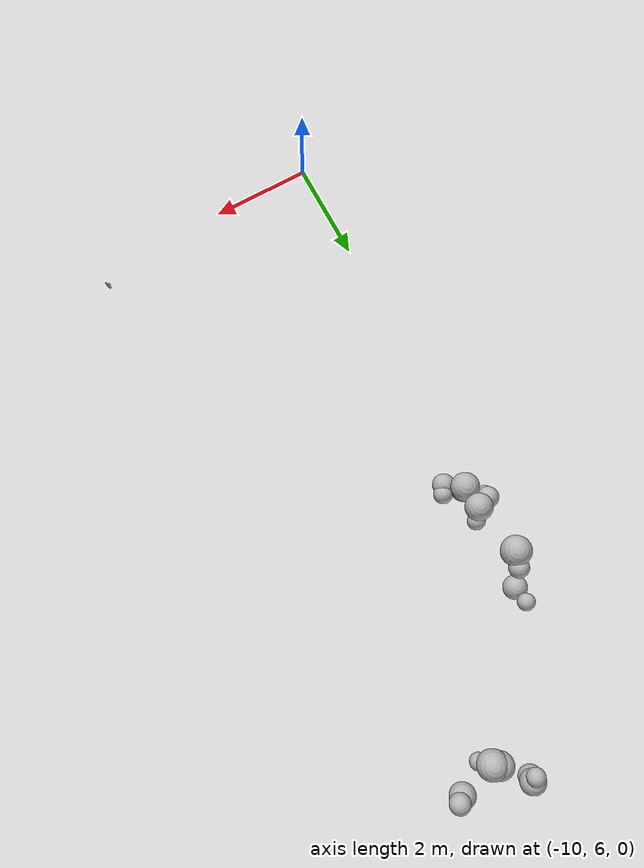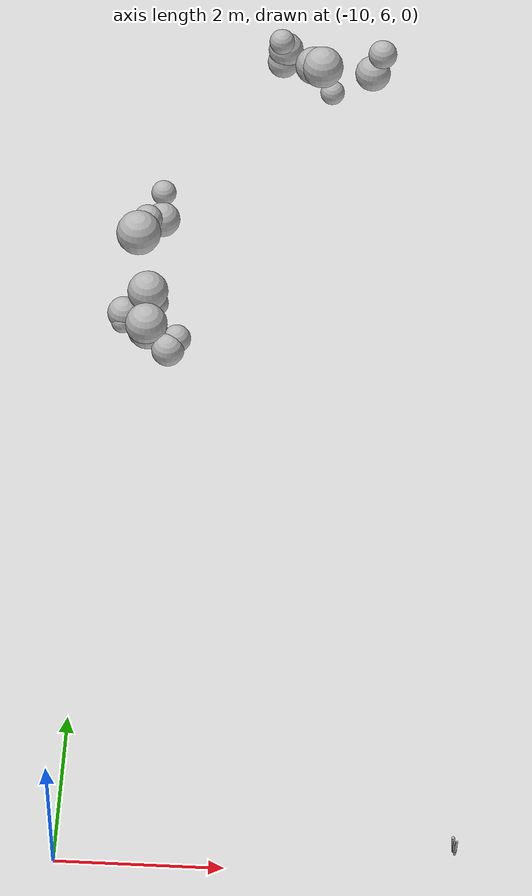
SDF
<sdf version="1.6">
 <world name="default">
  <model name="scrub">
   <static>true</static>
   <link name="scrub12_1">
    <pose>-7.8771 18.4900 0.7663 0 0 0</pose>
    <visual name="scrub12_1_v">
     <geometry><sphere><radius>0.2385</radius></sphere></geometry>
     <material>
      <script>
       <uri>model://bushfire/materials/scripts</uri>
       <uri>model://bushfire/materials/textures</uri>
       <name>Bushfire/Foliage0</name>
      </script>
     </material>
    </visual>
   </link>
   <link name="scrub12_2">
    <pose>-7.9262 18.3851 1.0306 0 0 0</pose>
    <visual name="scrub12_2_v">
     <geometry><sphere><radius>0.1725</radius></sphere></geometry>
     <material>
      <script>
       <uri>model://bushfire/materials/scripts</uri>
       <uri>model://bushfire/materials/textures</uri>
       <name>Bushfire/Foliage1</name>
      </script>
     </material>
    </visual>
   </link>
   <link name="scrub12_5">
    <pose>-7.9047 18.4390 0.5824 0 0 0</pose>
    <visual name="scrub12_5_v">
     <geometry><sphere><radius>0.2191</radius></sphere></geometry>
     <material>
      <script>
       <uri>model://bushfire/materials/scripts</uri>
       <uri>model://bushfire/materials/textures</uri>
       <name>Bushfire/Foliage2</name>
      </script>
     </material>
    </visual>
   </link>
   <link name="scrub42_0">
    <pose>-7.2113 17.7546 0.7358 0 0 0</pose>
    <visual name="scrub42_0_v">
     <geometry><sphere><radius>0.1641</radius></sphere></geometry>
     <material>
      <script>
       <uri>model://bushfire/materials/scripts</uri>
       <uri>model://bushfire/materials/textures</uri>
       <name>Bushfire/Foliage2</name>
      </script>
     </material>
    </visual>
   </link>
   <link name="scrub42_1">
    <pose>-7.4681 17.9919 1.1021 0 0 0</pose>
    <visual name="scrub42_1_v">
     <geometry><sphere><radius>0.1770</radius></sphere></geometry>
     <material>
      <script>
       <uri>model://bushfire/materials/scripts</uri>
       <uri>model://bushfire/materials/textures</uri>
       <name>Bushfire/Foliage2</name>
      </script>
     </material>
    </visual>
   </link>
   <link name="scrub42_2">
    <pose>-6.5525 18.1148 1.1385 0 0 0</pose>
    <visual name="scrub42_2_v">
     <geometry><sphere><radius>0.1941</radius></sphere></geometry>
     <material>
      <script>
       <uri>model://bushfire/materials/scripts</uri>
       <uri>model://bushfire/materials/textures</uri>
       <name>Bushfire/Foliage0</name>
      </script>
     </material>
    </visual>
   </link>
   <link name="scrub42_3">
    <pose>-6.6757 18.1094 0.7681 0 0 0</pose>
    <visual name="scrub42_3_v">
     <geometry><sphere><radius>0.2408</radius></sphere></geometry>
     <material>
      <script>
       <uri>model://bushfire/materials/scripts</uri>
       <uri>model://bushfire/materials/textures</uri>
       <name>Bushfire/Foliage1</name>
      </script>
     </material>
    </visual>
   </link>
   <link name="scrub42_5">
    <pose>-7.4705 17.9178 1.0787 0 0 0</pose>
    <visual name="scrub42_5_v">
     <geometry><sphere><radius>0.2556</radius></sphere></geometry>
     <material>
      <script>
       <uri>model://bushfire/materials/scripts</uri>
       <uri>model://bushfire/materials/textures</uri>
       <name>Bushfire/Foliage0</name>
      </script>
     </material>
    </visual>
   </link>
   <link name="scrub42_7">
    <pose>-7.3553 17.8334 1.1426 0 0 0</pose>
    <visual name="scrub42_7_v">
     <geometry><sphere><radius>0.2805</radius></sphere></geometry>
     <material>
      <script>
       <uri>model://bushfire/materials/scripts</uri>
       <uri>model://bushfire/materials/textures</uri>
       <name>Bushfire/Foliage0</name>
      </script>
     </material>
    </visual>
   </link>
   <link name="scrub50_0">
    <pose>-9.1367 13.1945 0.6976 0 0 0</pose>
    <visual name="scrub50_0_v">
     <geometry><sphere><radius>0.2120</radius></sphere></geometry>
     <material>
      <script>
       <uri>model://bushfire/materials/scripts</uri>
       <uri>model://bushfire/materials/textures</uri>
       <name>Bushfire/Foliage1</name>
      </script>
     </material>
    </visual>
   </link>
   <link name="scrub50_1">
    <pose>-9.7474 13.7903 0.6821 0 0 0</pose>
    <visual name="scrub50_1_v">
     <geometry><sphere><radius>0.2107</radius></sphere></geometry>
     <material>
      <script>
       <uri>model://bushfire/materials/scripts</uri>
       <uri>model://bushfire/materials/textures</uri>
       <name>Bushfire/Foliage0</name>
      </script>
     </material>
    </visual>
   </link>
   <link name="scrub50_2">
    <pose>-9.7553 13.6890 0.6267 0 0 0</pose>
    <visual name="scrub50_2_v">
     <geometry><sphere><radius>0.1490</radius></sphere></geometry>
     <material>
      <script>
       <uri>model://bushfire/materials/scripts</uri>
       <uri>model://bushfire/materials/textures</uri>
       <name>Bushfire/Foliage0</name>
      </script>
     </material>
    </visual>
   </link>
   <link name="scrub50_3">
    <pose>-9.3630 14.0706 0.5609 0 0 0</pose>
    <visual name="scrub50_3_v">
     <geometry><sphere><radius>0.1740</radius></sphere></geometry>
     <material>
      <script>
       <uri>model://bushfire/materials/scripts</uri>
       <uri>model://bushfire/materials/textures</uri>
       <name>Bushfire/Foliage1</name>
      </script>
     </material>
    </visual>
   </link>
   <link name="scrub50_4">
    <pose>-9.4331 13.8767 1.0307 0 0 0</pose>
    <visual name="scrub50_4_v">
     <geometry><sphere><radius>0.2624</radius></sphere></geometry>
     <material>
      <script>
       <uri>model://bushfire/materials/scripts</uri>
       <uri>model://bushfire/materials/textures</uri>
       <name>Bushfire/Foliage0</name>
      </script>
     </material>
    </visual>
   </link>
   <link name="scrub50_5">
    <pose>-9.0308 13.3507 0.7364 0 0 0</pose>
    <visual name="scrub50_5_v">
     <geometry><sphere><radius>0.1811</radius></sphere></geometry>
     <material>
      <script>
       <uri>model://bushfire/materials/scripts</uri>
       <uri>model://bushfire/materials/textures</uri>
       <name>Bushfire/Foliage2</name>
      </script>
     </material>
    </visual>
   </link>
   <link name="scrub50_6">
    <pose>-9.4118 13.4352 0.8085 0 0 0</pose>
    <visual name="scrub50_6_v">
     <geometry><sphere><radius>0.2593</radius></sphere></geometry>
     <material>
      <script>
       <uri>model://bushfire/materials/scripts</uri>
       <uri>model://bushfire/materials/textures</uri>
       <name>Bushfire/Foliage1</name>
      </script>
     </material>
    </visual>
   </link>
   <link name="scrub50_7">
    <pose>-9.4241 13.4303 0.9118 0 0 0</pose>
    <visual name="scrub50_7_v">
     <geometry><sphere><radius>0.2714</radius></sphere></geometry>
     <material>
      <script>
       <uri>model://bushfire/materials/scripts</uri>
       <uri>model://bushfire/materials/textures</uri>
       <name>Bushfire/Foliage2</name>
      </script>
     </material>
    </visual>
   </link>
   <link name="scrub62_0">
    <pose>-9.6257 14.8886 1.0005 0 0 0</pose>
    <visual name="scrub62_0_v">
     <geometry><sphere><radius>0.2914</radius></sphere></geometry>
     <material>
      <script>
       <uri>model://bushfire/materials/scripts</uri>
       <uri>model://bushfire/materials/textures</uri>
       <name>Bushfire/Foliage1</name>
      </script>
     </material>
    </visual>
   </link>
   <link name="scrub62_1">
    <pose>-9.3622 15.7742 0.7985 0 0 0</pose>
    <visual name="scrub62_1_v">
     <geometry><sphere><radius>0.1643</radius></sphere></geometry>
     <material>
      <script>
       <uri>model://bushfire/materials/scripts</uri>
       <uri>model://bushfire/materials/textures</uri>
       <name>Bushfire/Foliage2</name>
      </script>
     </material>
    </visual>
   </link>
   <link name="scrub62_2">
    <pose>-9.5285 15.1780 0.9406 0 0 0</pose>
    <visual name="scrub62_2_v">
     <geometry><sphere><radius>0.1920</radius></sphere></geometry>
     <material>
      <script>
       <uri>model://bushfire/materials/scripts</uri>
       <uri>model://bushfire/materials/textures</uri>
       <name>Bushfire/Foliage1</name>
      </script>
     </material>
    </visual>
   </link>
   <link name="scrub62_4">
    <pose>-9.3582 15.4646 0.6170 0 0 0</pose>
    <visual name="scrub62_4_v">
     <geometry><sphere><radius>0.2286</radius></sphere></geometry>
     <material>
      <script>
       <uri>model://bushfire/materials/scripts</uri>
       <uri>model://bushfire/materials/textures</uri>
       <name>Bushfire/Foliage1</name>
      </script>
     </material>
    </visual>
   </link>
  </model>
  <model name="tussocks">
   <static>true</static>
   <link name="tuft72_0">
    <pose>-5.3218 6.3670 0.0949 0 0.3599 1.8896</pose>
    <visual name="tuft72_0_v">
     <geometry><cylinder><radius>0.0140</radius><length>0.2063</length></cylinder></geometry>
     <material>
      <script>
       <uri>model://bushfire/materials/scripts</uri>
       <uri>model://bushfire/materials/textures</uri>
       <name>Bushfire/Tussock</name>
      </script>
     </material>
    </visual>
   </link>
   <link name="tuft72_1">
    <pose>-5.3043 6.3735 0.0778 0 0.2030 1.2737</pose>
    <visual name="tuft72_1_v">
     <geometry><cylinder><radius>0.0186</radius><length>0.1692</length></cylinder></geometry>
     <material>
      <script>
       <uri>model://bushfire/materials/scripts</uri>
       <uri>model://bushfire/materials/textures</uri>
       <name>Bushfire/Tussock</name>
      </script>
     </material>
    </visual>
   </link>
   <link name="tuft72_3">
    <pose>-5.3025 6.3553 0.1141 0 0.1178 0.8444</pose>
    <visual name="tuft72_3_v">
     <geometry><cylinder><radius>0.0133</radius><length>0.2480</length></cylinder></geometry>
     <material>
      <script>
       <uri>model://bushfire/materials/scripts</uri>
       <uri>model://bushfire/materials/textures</uri>
       <name>Bushfire/Tussock</name>
      </script>
     </material>
    </visual>
   </link>
   <link name="tuft72_5">
    <pose>-5.3233 6.3823 0.0851 0 0.1107 1.8082</pose>
    <visual name="tuft72_5_v">
     <geometry><cylinder><radius>0.0175</radius><length>0.1851</length></cylinder></geometry>
     <material>
      <script>
       <uri>model://bushfire/materials/scripts</uri>
       <uri>model://bushfire/materials/textures</uri>
       <name>Bushfire/Foliage2</name>
      </script>
     </material>
    </visual>
   </link>
   <link name="tuft72_7">
    <pose>-5.3336 6.3991 0.1161 0 0.1123 1.9102</pose>
    <visual name="tuft72_7_v">
     <geometry><cylinder><radius>0.0191</radius><length>0.2524</length></cylinder></geometry>
     <material>
      <script>
       <uri>model://bushfire/materials/scripts</uri>
       <uri>model://bushfire/materials/textures</uri>
       <name>Bushfire/Tussock</name>
      </script>
     </material>
    </visual>
   </link>
  </model>
 </world>
</sdf>
